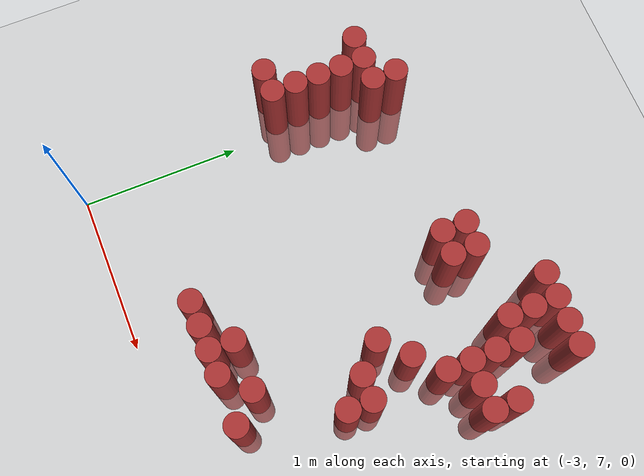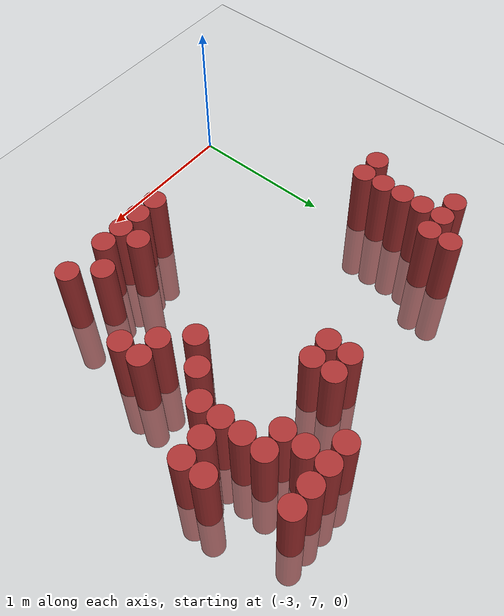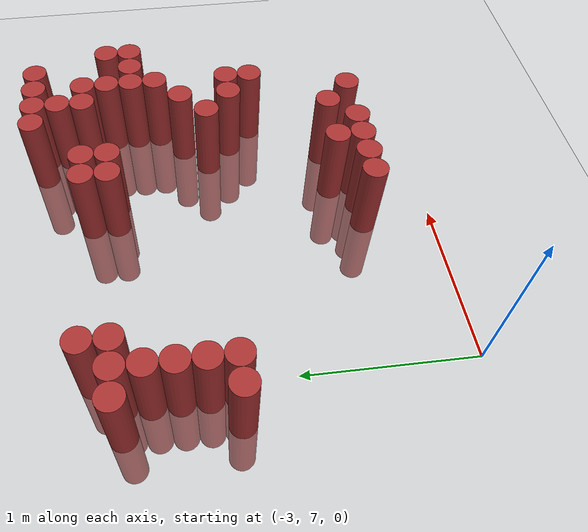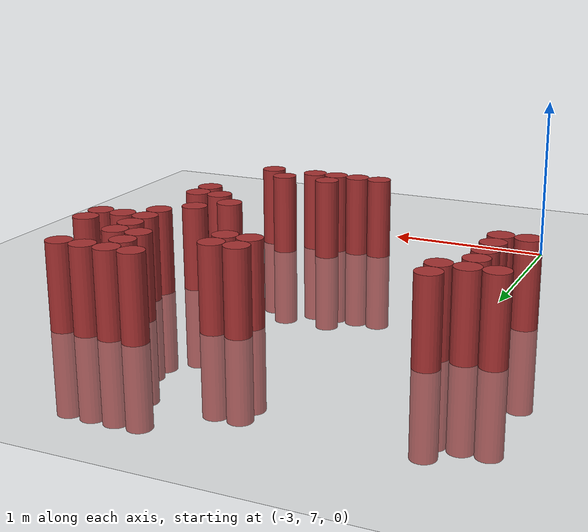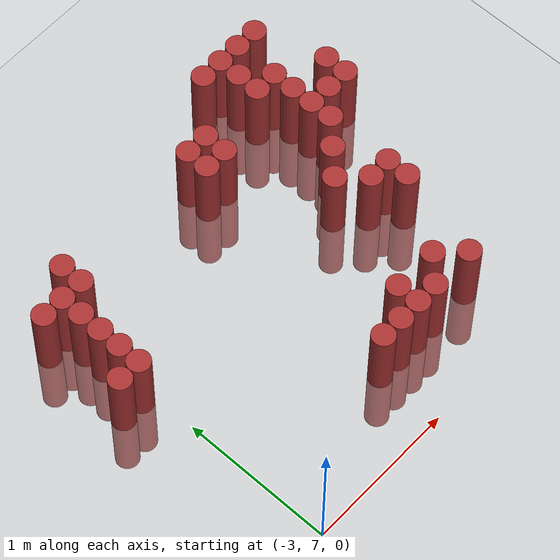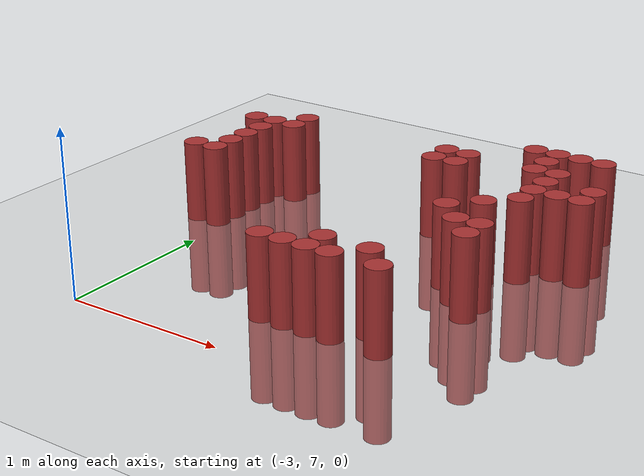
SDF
<sdf version="1.6">
 <world name="default">
  <model name="ground_plane">
   <static>1</static>
   <link name="link">
    <collision name="collision">
     <geometry><plane><normal>0 0 1</normal><size>100 100</size></plane></geometry>
     <surface><friction><ode><mu>100</mu><mu2>50</mu2></ode></friction></surface>
    </collision>
    <visual name="visual">
     <cast_shadows>0</cast_shadows>
     <geometry><plane><normal>0 0 1</normal><size>100 100</size></plane></geometry>
     <material>
      <script><uri>file://media/materials/scripts/gazebo.material</uri><name>Gazebo/Grey</name></script>
     </material>
    </visual>
   </link>
  </model>
  <model name="unit_cylinder_205">
   <static>1</static>
   <pose>-3.225000 8.325000 0.000000 0.000000 0.000000 0.000000</pose>
   <link name="link">
    <inertial>
     <mass>1</mass>
     <inertia><ixx>0.145833</ixx><ixy>0</ixy><ixz>0</ixz><iyy>0.145833</iyy><iyz>0</iyz><izz>0.125</izz></inertia>
    </inertial>
    <collision name="collision">
     <geometry><cylinder><radius>0.075000</radius><length>1</length></cylinder></geometry>
    </collision>
    <visual name="visual">
     <geometry><cylinder><radius>0.075000</radius><length>1</length></cylinder></geometry>
     <material>
      <ambient>0.648000 0.192000 0.192000 1</ambient>
      <diffuse>0.648000 0.192000 0.192000 1</diffuse>
     </material>
     <material>
      <script><name>Gazebo/Grey</name><uri>file://media/materials/scripts/gazebo.material</uri></script>
     </material>
    </visual>
    <sensor name="sensor_contact" type="contact"><contact><collision>collision</collision></contact></sensor>
   </link>
   <plugin filename="gz-sim-touchplugin-system" name="gz::sim::systems::TouchPlugin">
    <target>robot</target>
    <namespace>robot</namespace>
    <time>0.001</time>
    <enabled>true</enabled>
   </plugin>
  </model>
  <model name="unit_cylinder_206">
   <static>1</static>
   <pose>-3.225000 8.925000 0.000000 0.000000 0.000000 0.000000</pose>
   <link name="link">
    <inertial>
     <mass>1</mass>
     <inertia><ixx>0.145833</ixx><ixy>0</ixy><ixz>0</ixz><iyy>0.145833</iyy><iyz>0</iyz><izz>0.125</izz></inertia>
    </inertial>
    <collision name="collision">
     <geometry><cylinder><radius>0.075000</radius><length>1</length></cylinder></geometry>
    </collision>
    <visual name="visual">
     <geometry><cylinder><radius>0.075000</radius><length>1</length></cylinder></geometry>
     <material>
      <ambient>0.648000 0.192000 0.192000 1</ambient>
      <diffuse>0.648000 0.192000 0.192000 1</diffuse>
     </material>
     <material>
      <script><name>Gazebo/Grey</name><uri>file://media/materials/scripts/gazebo.material</uri></script>
     </material>
    </visual>
    <sensor name="sensor_contact" type="contact"><contact><collision>collision</collision></contact></sensor>
   </link>
   <plugin filename="gz-sim-touchplugin-system" name="gz::sim::systems::TouchPlugin">
    <target>robot</target>
    <namespace>robot</namespace>
    <time>0.001</time>
    <enabled>true</enabled>
   </plugin>
  </model>
  <model name="unit_cylinder_212">
   <static>1</static>
   <pose>-3.075000 8.325000 0.000000 0.000000 0.000000 0.000000</pose>
   <link name="link">
    <inertial>
     <mass>1</mass>
     <inertia><ixx>0.145833</ixx><ixy>0</ixy><ixz>0</ixz><iyy>0.145833</iyy><iyz>0</iyz><izz>0.125</izz></inertia>
    </inertial>
    <collision name="collision">
     <geometry><cylinder><radius>0.075000</radius><length>1</length></cylinder></geometry>
    </collision>
    <visual name="visual">
     <geometry><cylinder><radius>0.075000</radius><length>1</length></cylinder></geometry>
     <material>
      <ambient>0.648000 0.192000 0.192000 1</ambient>
      <diffuse>0.648000 0.192000 0.192000 1</diffuse>
     </material>
     <material>
      <script><name>Gazebo/Grey</name><uri>file://media/materials/scripts/gazebo.material</uri></script>
     </material>
    </visual>
    <sensor name="sensor_contact" type="contact"><contact><collision>collision</collision></contact></sensor>
   </link>
   <plugin filename="gz-sim-touchplugin-system" name="gz::sim::systems::TouchPlugin">
    <target>robot</target>
    <namespace>robot</namespace>
    <time>0.001</time>
    <enabled>true</enabled>
   </plugin>
  </model>
  <model name="unit_cylinder_213">
   <static>1</static>
   <pose>-3.075000 8.475000 0.000000 0.000000 0.000000 0.000000</pose>
   <link name="link">
    <inertial>
     <mass>1</mass>
     <inertia><ixx>0.145833</ixx><ixy>0</ixy><ixz>0</ixz><iyy>0.145833</iyy><iyz>0</iyz><izz>0.125</izz></inertia>
    </inertial>
    <collision name="collision">
     <geometry><cylinder><radius>0.075000</radius><length>1</length></cylinder></geometry>
    </collision>
    <visual name="visual">
     <geometry><cylinder><radius>0.075000</radius><length>1</length></cylinder></geometry>
     <material>
      <ambient>0.648000 0.192000 0.192000 1</ambient>
      <diffuse>0.648000 0.192000 0.192000 1</diffuse>
     </material>
     <material>
      <script><name>Gazebo/Grey</name><uri>file://media/materials/scripts/gazebo.material</uri></script>
     </material>
    </visual>
    <sensor name="sensor_contact" type="contact"><contact><collision>collision</collision></contact></sensor>
   </link>
   <plugin filename="gz-sim-touchplugin-system" name="gz::sim::systems::TouchPlugin">
    <target>robot</target>
    <namespace>robot</namespace>
    <time>0.001</time>
    <enabled>true</enabled>
   </plugin>
  </model>
  <model name="unit_cylinder_214">
   <static>1</static>
   <pose>-3.075000 8.625000 0.000000 0.000000 0.000000 0.000000</pose>
   <link name="link">
    <inertial>
     <mass>1</mass>
     <inertia><ixx>0.145833</ixx><ixy>0</ixy><ixz>0</ixz><iyy>0.145833</iyy><iyz>0</iyz><izz>0.125</izz></inertia>
    </inertial>
    <collision name="collision">
     <geometry><cylinder><radius>0.075000</radius><length>1</length></cylinder></geometry>
    </collision>
    <visual name="visual">
     <geometry><cylinder><radius>0.075000</radius><length>1</length></cylinder></geometry>
     <material>
      <ambient>0.648000 0.192000 0.192000 1</ambient>
      <diffuse>0.648000 0.192000 0.192000 1</diffuse>
     </material>
     <material>
      <script><name>Gazebo/Grey</name><uri>file://media/materials/scripts/gazebo.material</uri></script>
     </material>
    </visual>
    <sensor name="sensor_contact" type="contact"><contact><collision>collision</collision></contact></sensor>
   </link>
   <plugin filename="gz-sim-touchplugin-system" name="gz::sim::systems::TouchPlugin">
    <target>robot</target>
    <namespace>robot</namespace>
    <time>0.001</time>
    <enabled>true</enabled>
   </plugin>
  </model>
  <model name="unit_cylinder_215">
   <static>1</static>
   <pose>-3.075000 8.775000 0.000000 0.000000 0.000000 0.000000</pose>
   <link name="link">
    <inertial>
     <mass>1</mass>
     <inertia><ixx>0.145833</ixx><ixy>0</ixy><ixz>0</ixz><iyy>0.145833</iyy><iyz>0</iyz><izz>0.125</izz></inertia>
    </inertial>
    <collision name="collision">
     <geometry><cylinder><radius>0.075000</radius><length>1</length></cylinder></geometry>
    </collision>
    <visual name="visual">
     <geometry><cylinder><radius>0.075000</radius><length>1</length></cylinder></geometry>
     <material>
      <ambient>0.648000 0.192000 0.192000 1</ambient>
      <diffuse>0.648000 0.192000 0.192000 1</diffuse>
     </material>
     <material>
      <script><name>Gazebo/Grey</name><uri>file://media/materials/scripts/gazebo.material</uri></script>
     </material>
    </visual>
    <sensor name="sensor_contact" type="contact"><contact><collision>collision</collision></contact></sensor>
   </link>
   <plugin filename="gz-sim-touchplugin-system" name="gz::sim::systems::TouchPlugin">
    <target>robot</target>
    <namespace>robot</namespace>
    <time>0.001</time>
    <enabled>true</enabled>
   </plugin>
  </model>
  <model name="unit_cylinder_216">
   <static>1</static>
   <pose>-3.075000 8.925000 0.000000 0.000000 0.000000 0.000000</pose>
   <link name="link">
    <inertial>
     <mass>1</mass>
     <inertia><ixx>0.145833</ixx><ixy>0</ixy><ixz>0</ixz><iyy>0.145833</iyy><iyz>0</iyz><izz>0.125</izz></inertia>
    </inertial>
    <collision name="collision">
     <geometry><cylinder><radius>0.075000</radius><length>1</length></cylinder></geometry>
    </collision>
    <visual name="visual">
     <geometry><cylinder><radius>0.075000</radius><length>1</length></cylinder></geometry>
     <material>
      <ambient>0.648000 0.192000 0.192000 1</ambient>
      <diffuse>0.648000 0.192000 0.192000 1</diffuse>
     </material>
     <material>
      <script><name>Gazebo/Grey</name><uri>file://media/materials/scripts/gazebo.material</uri></script>
     </material>
    </visual>
    <sensor name="sensor_contact" type="contact"><contact><collision>collision</collision></contact></sensor>
   </link>
   <plugin filename="gz-sim-touchplugin-system" name="gz::sim::systems::TouchPlugin">
    <target>robot</target>
    <namespace>robot</namespace>
    <time>0.001</time>
    <enabled>true</enabled>
   </plugin>
  </model>
  <model name="unit_cylinder_218">
   <static>1</static>
   <pose>-2.925000 8.925000 0.000000 0.000000 0.000000 0.000000</pose>
   <link name="link">
    <inertial>
     <mass>1</mass>
     <inertia><ixx>0.145833</ixx><ixy>0</ixy><ixz>0</ixz><iyy>0.145833</iyy><iyz>0</iyz><izz>0.125</izz></inertia>
    </inertial>
    <collision name="collision">
     <geometry><cylinder><radius>0.075000</radius><length>1</length></cylinder></geometry>
    </collision>
    <visual name="visual">
     <geometry><cylinder><radius>0.075000</radius><length>1</length></cylinder></geometry>
     <material>
      <ambient>0.648000 0.192000 0.192000 1</ambient>
      <diffuse>0.648000 0.192000 0.192000 1</diffuse>
     </material>
     <material>
      <script><name>Gazebo/Grey</name><uri>file://media/materials/scripts/gazebo.material</uri></script>
     </material>
    </visual>
    <sensor name="sensor_contact" type="contact"><contact><collision>collision</collision></contact></sensor>
   </link>
   <plugin filename="gz-sim-touchplugin-system" name="gz::sim::systems::TouchPlugin">
    <target>robot</target>
    <namespace>robot</namespace>
    <time>0.001</time>
    <enabled>true</enabled>
   </plugin>
  </model>
  <model name="unit_cylinder_219">
   <static>1</static>
   <pose>-2.925000 9.075000 0.000000 0.000000 0.000000 0.000000</pose>
   <link name="link">
    <inertial>
     <mass>1</mass>
     <inertia><ixx>0.145833</ixx><ixy>0</ixy><ixz>0</ixz><iyy>0.145833</iyy><iyz>0</iyz><izz>0.125</izz></inertia>
    </inertial>
    <collision name="collision">
     <geometry><cylinder><radius>0.075000</radius><length>1</length></cylinder></geometry>
    </collision>
    <visual name="visual">
     <geometry><cylinder><radius>0.075000</radius><length>1</length></cylinder></geometry>
     <material>
      <ambient>0.648000 0.192000 0.192000 1</ambient>
      <diffuse>0.648000 0.192000 0.192000 1</diffuse>
     </material>
     <material>
      <script><name>Gazebo/Grey</name><uri>file://media/materials/scripts/gazebo.material</uri></script>
     </material>
    </visual>
    <sensor name="sensor_contact" type="contact"><contact><collision>collision</collision></contact></sensor>
   </link>
   <plugin filename="gz-sim-touchplugin-system" name="gz::sim::systems::TouchPlugin">
    <target>robot</target>
    <namespace>robot</namespace>
    <time>0.001</time>
    <enabled>true</enabled>
   </plugin>
  </model>
  <model name="unit_cylinder_223">
   <static>1</static>
   <pose>-2.025000 7.425000 0.000000 0.000000 0.000000 0.000000</pose>
   <link name="link">
    <inertial>
     <mass>1</mass>
     <inertia><ixx>0.145833</ixx><ixy>0</ixy><ixz>0</ixz><iyy>0.145833</iyy><iyz>0</iyz><izz>0.125</izz></inertia>
    </inertial>
    <collision name="collision">
     <geometry><cylinder><radius>0.075000</radius><length>1</length></cylinder></geometry>
    </collision>
    <visual name="visual">
     <geometry><cylinder><radius>0.075000</radius><length>1</length></cylinder></geometry>
     <material>
      <ambient>0.648000 0.192000 0.192000 1</ambient>
      <diffuse>0.648000 0.192000 0.192000 1</diffuse>
     </material>
     <material>
      <script><name>Gazebo/Grey</name><uri>file://media/materials/scripts/gazebo.material</uri></script>
     </material>
    </visual>
    <sensor name="sensor_contact" type="contact"><contact><collision>collision</collision></contact></sensor>
   </link>
   <plugin filename="gz-sim-touchplugin-system" name="gz::sim::systems::TouchPlugin">
    <target>robot</target>
    <namespace>robot</namespace>
    <time>0.001</time>
    <enabled>true</enabled>
   </plugin>
  </model>
  <model name="unit_cylinder_228">
   <static>1</static>
   <pose>-1.875000 7.425000 0.000000 0.000000 0.000000 0.000000</pose>
   <link name="link">
    <inertial>
     <mass>1</mass>
     <inertia><ixx>0.145833</ixx><ixy>0</ixy><ixz>0</ixz><iyy>0.145833</iyy><iyz>0</iyz><izz>0.125</izz></inertia>
    </inertial>
    <collision name="collision">
     <geometry><cylinder><radius>0.075000</radius><length>1</length></cylinder></geometry>
    </collision>
    <visual name="visual">
     <geometry><cylinder><radius>0.075000</radius><length>1</length></cylinder></geometry>
     <material>
      <ambient>0.648000 0.192000 0.192000 1</ambient>
      <diffuse>0.648000 0.192000 0.192000 1</diffuse>
     </material>
     <material>
      <script><name>Gazebo/Grey</name><uri>file://media/materials/scripts/gazebo.material</uri></script>
     </material>
    </visual>
    <sensor name="sensor_contact" type="contact"><contact><collision>collision</collision></contact></sensor>
   </link>
   <plugin filename="gz-sim-touchplugin-system" name="gz::sim::systems::TouchPlugin">
    <target>robot</target>
    <namespace>robot</namespace>
    <time>0.001</time>
    <enabled>true</enabled>
   </plugin>
  </model>
  <model name="unit_cylinder_229">
   <static>1</static>
   <pose>-1.875000 8.925000 0.000000 0.000000 0.000000 0.000000</pose>
   <link name="link">
    <inertial>
     <mass>1</mass>
     <inertia><ixx>0.145833</ixx><ixy>0</ixy><ixz>0</ixz><iyy>0.145833</iyy><iyz>0</iyz><izz>0.125</izz></inertia>
    </inertial>
    <collision name="collision">
     <geometry><cylinder><radius>0.075000</radius><length>1</length></cylinder></geometry>
    </collision>
    <visual name="visual">
     <geometry><cylinder><radius>0.075000</radius><length>1</length></cylinder></geometry>
     <material>
      <ambient>0.648000 0.192000 0.192000 1</ambient>
      <diffuse>0.648000 0.192000 0.192000 1</diffuse>
     </material>
     <material>
      <script><name>Gazebo/Grey</name><uri>file://media/materials/scripts/gazebo.material</uri></script>
     </material>
    </visual>
    <sensor name="sensor_contact" type="contact"><contact><collision>collision</collision></contact></sensor>
   </link>
   <plugin filename="gz-sim-touchplugin-system" name="gz::sim::systems::TouchPlugin">
    <target>robot</target>
    <namespace>robot</namespace>
    <time>0.001</time>
    <enabled>true</enabled>
   </plugin>
  </model>
  <model name="unit_cylinder_230">
   <static>1</static>
   <pose>-1.875000 9.075000 0.000000 0.000000 0.000000 0.000000</pose>
   <link name="link">
    <inertial>
     <mass>1</mass>
     <inertia><ixx>0.145833</ixx><ixy>0</ixy><ixz>0</ixz><iyy>0.145833</iyy><iyz>0</iyz><izz>0.125</izz></inertia>
    </inertial>
    <collision name="collision">
     <geometry><cylinder><radius>0.075000</radius><length>1</length></cylinder></geometry>
    </collision>
    <visual name="visual">
     <geometry><cylinder><radius>0.075000</radius><length>1</length></cylinder></geometry>
     <material>
      <ambient>0.648000 0.192000 0.192000 1</ambient>
      <diffuse>0.648000 0.192000 0.192000 1</diffuse>
     </material>
     <material>
      <script><name>Gazebo/Grey</name><uri>file://media/materials/scripts/gazebo.material</uri></script>
     </material>
    </visual>
    <sensor name="sensor_contact" type="contact"><contact><collision>collision</collision></contact></sensor>
   </link>
   <plugin filename="gz-sim-touchplugin-system" name="gz::sim::systems::TouchPlugin">
    <target>robot</target>
    <namespace>robot</namespace>
    <time>0.001</time>
    <enabled>true</enabled>
   </plugin>
  </model>
  <model name="unit_cylinder_234">
   <static>1</static>
   <pose>-1.725000 7.425000 0.000000 0.000000 0.000000 0.000000</pose>
   <link name="link">
    <inertial>
     <mass>1</mass>
     <inertia><ixx>0.145833</ixx><ixy>0</ixy><ixz>0</ixz><iyy>0.145833</iyy><iyz>0</iyz><izz>0.125</izz></inertia>
    </inertial>
    <collision name="collision">
     <geometry><cylinder><radius>0.075000</radius><length>1</length></cylinder></geometry>
    </collision>
    <visual name="visual">
     <geometry><cylinder><radius>0.075000</radius><length>1</length></cylinder></geometry>
     <material>
      <ambient>0.648000 0.192000 0.192000 1</ambient>
      <diffuse>0.648000 0.192000 0.192000 1</diffuse>
     </material>
     <material>
      <script><name>Gazebo/Grey</name><uri>file://media/materials/scripts/gazebo.material</uri></script>
     </material>
    </visual>
    <sensor name="sensor_contact" type="contact"><contact><collision>collision</collision></contact></sensor>
   </link>
   <plugin filename="gz-sim-touchplugin-system" name="gz::sim::systems::TouchPlugin">
    <target>robot</target>
    <namespace>robot</namespace>
    <time>0.001</time>
    <enabled>true</enabled>
   </plugin>
  </model>
  <model name="unit_cylinder_235">
   <static>1</static>
   <pose>-1.725000 7.575000 0.000000 0.000000 0.000000 0.000000</pose>
   <link name="link">
    <inertial>
     <mass>1</mass>
     <inertia><ixx>0.145833</ixx><ixy>0</ixy><ixz>0</ixz><iyy>0.145833</iyy><iyz>0</iyz><izz>0.125</izz></inertia>
    </inertial>
    <collision name="collision">
     <geometry><cylinder><radius>0.075000</radius><length>1</length></cylinder></geometry>
    </collision>
    <visual name="visual">
     <geometry><cylinder><radius>0.075000</radius><length>1</length></cylinder></geometry>
     <material>
      <ambient>0.648000 0.192000 0.192000 1</ambient>
      <diffuse>0.648000 0.192000 0.192000 1</diffuse>
     </material>
     <material>
      <script><name>Gazebo/Grey</name><uri>file://media/materials/scripts/gazebo.material</uri></script>
     </material>
    </visual>
    <sensor name="sensor_contact" type="contact"><contact><collision>collision</collision></contact></sensor>
   </link>
   <plugin filename="gz-sim-touchplugin-system" name="gz::sim::systems::TouchPlugin">
    <target>robot</target>
    <namespace>robot</namespace>
    <time>0.001</time>
    <enabled>true</enabled>
   </plugin>
  </model>
  <model name="unit_cylinder_236">
   <static>1</static>
   <pose>-1.725000 8.925000 0.000000 0.000000 0.000000 0.000000</pose>
   <link name="link">
    <inertial>
     <mass>1</mass>
     <inertia><ixx>0.145833</ixx><ixy>0</ixy><ixz>0</ixz><iyy>0.145833</iyy><iyz>0</iyz><izz>0.125</izz></inertia>
    </inertial>
    <collision name="collision">
     <geometry><cylinder><radius>0.075000</radius><length>1</length></cylinder></geometry>
    </collision>
    <visual name="visual">
     <geometry><cylinder><radius>0.075000</radius><length>1</length></cylinder></geometry>
     <material>
      <ambient>0.648000 0.192000 0.192000 1</ambient>
      <diffuse>0.648000 0.192000 0.192000 1</diffuse>
     </material>
     <material>
      <script><name>Gazebo/Grey</name><uri>file://media/materials/scripts/gazebo.material</uri></script>
     </material>
    </visual>
    <sensor name="sensor_contact" type="contact"><contact><collision>collision</collision></contact></sensor>
   </link>
   <plugin filename="gz-sim-touchplugin-system" name="gz::sim::systems::TouchPlugin">
    <target>robot</target>
    <namespace>robot</namespace>
    <time>0.001</time>
    <enabled>true</enabled>
   </plugin>
  </model>
  <model name="unit_cylinder_237">
   <static>1</static>
   <pose>-1.725000 9.075000 0.000000 0.000000 0.000000 0.000000</pose>
   <link name="link">
    <inertial>
     <mass>1</mass>
     <inertia><ixx>0.145833</ixx><ixy>0</ixy><ixz>0</ixz><iyy>0.145833</iyy><iyz>0</iyz><izz>0.125</izz></inertia>
    </inertial>
    <collision name="collision">
     <geometry><cylinder><radius>0.075000</radius><length>1</length></cylinder></geometry>
    </collision>
    <visual name="visual">
     <geometry><cylinder><radius>0.075000</radius><length>1</length></cylinder></geometry>
     <material>
      <ambient>0.648000 0.192000 0.192000 1</ambient>
      <diffuse>0.648000 0.192000 0.192000 1</diffuse>
     </material>
     <material>
      <script><name>Gazebo/Grey</name><uri>file://media/materials/scripts/gazebo.material</uri></script>
     </material>
    </visual>
    <sensor name="sensor_contact" type="contact"><contact><collision>collision</collision></contact></sensor>
   </link>
   <plugin filename="gz-sim-touchplugin-system" name="gz::sim::systems::TouchPlugin">
    <target>robot</target>
    <namespace>robot</namespace>
    <time>0.001</time>
    <enabled>true</enabled>
   </plugin>
  </model>
  <model name="unit_cylinder_240">
   <static>1</static>
   <pose>-1.575000 7.425000 0.000000 0.000000 0.000000 0.000000</pose>
   <link name="link">
    <inertial>
     <mass>1</mass>
     <inertia><ixx>0.145833</ixx><ixy>0</ixy><ixz>0</ixz><iyy>0.145833</iyy><iyz>0</iyz><izz>0.125</izz></inertia>
    </inertial>
    <collision name="collision">
     <geometry><cylinder><radius>0.075000</radius><length>1</length></cylinder></geometry>
    </collision>
    <visual name="visual">
     <geometry><cylinder><radius>0.075000</radius><length>1</length></cylinder></geometry>
     <material>
      <ambient>0.648000 0.192000 0.192000 1</ambient>
      <diffuse>0.648000 0.192000 0.192000 1</diffuse>
     </material>
     <material>
      <script><name>Gazebo/Grey</name><uri>file://media/materials/scripts/gazebo.material</uri></script>
     </material>
    </visual>
    <sensor name="sensor_contact" type="contact"><contact><collision>collision</collision></contact></sensor>
   </link>
   <plugin filename="gz-sim-touchplugin-system" name="gz::sim::systems::TouchPlugin">
    <target>robot</target>
    <namespace>robot</namespace>
    <time>0.001</time>
    <enabled>true</enabled>
   </plugin>
  </model>
  <model name="unit_cylinder_246">
   <static>1</static>
   <pose>-1.425000 7.575000 0.000000 0.000000 0.000000 0.000000</pose>
   <link name="link">
    <inertial>
     <mass>1</mass>
     <inertia><ixx>0.145833</ixx><ixy>0</ixy><ixz>0</ixz><iyy>0.145833</iyy><iyz>0</iyz><izz>0.125</izz></inertia>
    </inertial>
    <collision name="collision">
     <geometry><cylinder><radius>0.075000</radius><length>1</length></cylinder></geometry>
    </collision>
    <visual name="visual">
     <geometry><cylinder><radius>0.075000</radius><length>1</length></cylinder></geometry>
     <material>
      <ambient>0.648000 0.192000 0.192000 1</ambient>
      <diffuse>0.648000 0.192000 0.192000 1</diffuse>
     </material>
     <material>
      <script><name>Gazebo/Grey</name><uri>file://media/materials/scripts/gazebo.material</uri></script>
     </material>
    </visual>
    <sensor name="sensor_contact" type="contact"><contact><collision>collision</collision></contact></sensor>
   </link>
   <plugin filename="gz-sim-touchplugin-system" name="gz::sim::systems::TouchPlugin">
    <target>robot</target>
    <namespace>robot</namespace>
    <time>0.001</time>
    <enabled>true</enabled>
   </plugin>
  </model>
  <model name="unit_cylinder_247">
   <static>1</static>
   <pose>-1.425000 8.325000 0.000000 0.000000 0.000000 0.000000</pose>
   <link name="link">
    <inertial>
     <mass>1</mass>
     <inertia><ixx>0.145833</ixx><ixy>0</ixy><ixz>0</ixz><iyy>0.145833</iyy><iyz>0</iyz><izz>0.125</izz></inertia>
    </inertial>
    <collision name="collision">
     <geometry><cylinder><radius>0.075000</radius><length>1</length></cylinder></geometry>
    </collision>
    <visual name="visual">
     <geometry><cylinder><radius>0.075000</radius><length>1</length></cylinder></geometry>
     <material>
      <ambient>0.648000 0.192000 0.192000 1</ambient>
      <diffuse>0.648000 0.192000 0.192000 1</diffuse>
     </material>
     <material>
      <script><name>Gazebo/Grey</name><uri>file://media/materials/scripts/gazebo.material</uri></script>
     </material>
    </visual>
    <sensor name="sensor_contact" type="contact"><contact><collision>collision</collision></contact></sensor>
   </link>
   <plugin filename="gz-sim-touchplugin-system" name="gz::sim::systems::TouchPlugin">
    <target>robot</target>
    <namespace>robot</namespace>
    <time>0.001</time>
    <enabled>true</enabled>
   </plugin>
  </model>
  <model name="unit_cylinder_248">
   <static>1</static>
   <pose>-1.425000 9.375000 0.000000 0.000000 0.000000 0.000000</pose>
   <link name="link">
    <inertial>
     <mass>1</mass>
     <inertia><ixx>0.145833</ixx><ixy>0</ixy><ixz>0</ixz><iyy>0.145833</iyy><iyz>0</iyz><izz>0.125</izz></inertia>
    </inertial>
    <collision name="collision">
     <geometry><cylinder><radius>0.075000</radius><length>1</length></cylinder></geometry>
    </collision>
    <visual name="visual">
     <geometry><cylinder><radius>0.075000</radius><length>1</length></cylinder></geometry>
     <material>
      <ambient>0.648000 0.192000 0.192000 1</ambient>
      <diffuse>0.648000 0.192000 0.192000 1</diffuse>
     </material>
     <material>
      <script><name>Gazebo/Grey</name><uri>file://media/materials/scripts/gazebo.material</uri></script>
     </material>
    </visual>
    <sensor name="sensor_contact" type="contact"><contact><collision>collision</collision></contact></sensor>
   </link>
   <plugin filename="gz-sim-touchplugin-system" name="gz::sim::systems::TouchPlugin">
    <target>robot</target>
    <namespace>robot</namespace>
    <time>0.001</time>
    <enabled>true</enabled>
   </plugin>
  </model>
  <model name="unit_cylinder_251">
   <static>1</static>
   <pose>-1.275000 7.425000 0.000000 0.000000 0.000000 0.000000</pose>
   <link name="link">
    <inertial>
     <mass>1</mass>
     <inertia><ixx>0.145833</ixx><ixy>0</ixy><ixz>0</ixz><iyy>0.145833</iyy><iyz>0</iyz><izz>0.125</izz></inertia>
    </inertial>
    <collision name="collision">
     <geometry><cylinder><radius>0.075000</radius><length>1</length></cylinder></geometry>
    </collision>
    <visual name="visual">
     <geometry><cylinder><radius>0.075000</radius><length>1</length></cylinder></geometry>
     <material>
      <ambient>0.648000 0.192000 0.192000 1</ambient>
      <diffuse>0.648000 0.192000 0.192000 1</diffuse>
     </material>
     <material>
      <script><name>Gazebo/Grey</name><uri>file://media/materials/scripts/gazebo.material</uri></script>
     </material>
    </visual>
    <sensor name="sensor_contact" type="contact"><contact><collision>collision</collision></contact></sensor>
   </link>
   <plugin filename="gz-sim-touchplugin-system" name="gz::sim::systems::TouchPlugin">
    <target>robot</target>
    <namespace>robot</namespace>
    <time>0.001</time>
    <enabled>true</enabled>
   </plugin>
  </model>
  <model name="unit_cylinder_252">
   <static>1</static>
   <pose>-1.275000 8.175000 0.000000 0.000000 0.000000 0.000000</pose>
   <link name="link">
    <inertial>
     <mass>1</mass>
     <inertia><ixx>0.145833</ixx><ixy>0</ixy><ixz>0</ixz><iyy>0.145833</iyy><iyz>0</iyz><izz>0.125</izz></inertia>
    </inertial>
    <collision name="collision">
     <geometry><cylinder><radius>0.075000</radius><length>1</length></cylinder></geometry>
    </collision>
    <visual name="visual">
     <geometry><cylinder><radius>0.075000</radius><length>1</length></cylinder></geometry>
     <material>
      <ambient>0.648000 0.192000 0.192000 1</ambient>
      <diffuse>0.648000 0.192000 0.192000 1</diffuse>
     </material>
     <material>
      <script><name>Gazebo/Grey</name><uri>file://media/materials/scripts/gazebo.material</uri></script>
     </material>
    </visual>
    <sensor name="sensor_contact" type="contact"><contact><collision>collision</collision></contact></sensor>
   </link>
   <plugin filename="gz-sim-touchplugin-system" name="gz::sim::systems::TouchPlugin">
    <target>robot</target>
    <namespace>robot</namespace>
    <time>0.001</time>
    <enabled>true</enabled>
   </plugin>
  </model>
  <model name="unit_cylinder_253">
   <static>1</static>
   <pose>-1.275000 8.475000 0.000000 0.000000 0.000000 0.000000</pose>
   <link name="link">
    <inertial>
     <mass>1</mass>
     <inertia><ixx>0.145833</ixx><ixy>0</ixy><ixz>0</ixz><iyy>0.145833</iyy><iyz>0</iyz><izz>0.125</izz></inertia>
    </inertial>
    <collision name="collision">
     <geometry><cylinder><radius>0.075000</radius><length>1</length></cylinder></geometry>
    </collision>
    <visual name="visual">
     <geometry><cylinder><radius>0.075000</radius><length>1</length></cylinder></geometry>
     <material>
      <ambient>0.648000 0.192000 0.192000 1</ambient>
      <diffuse>0.648000 0.192000 0.192000 1</diffuse>
     </material>
     <material>
      <script><name>Gazebo/Grey</name><uri>file://media/materials/scripts/gazebo.material</uri></script>
     </material>
    </visual>
    <sensor name="sensor_contact" type="contact"><contact><collision>collision</collision></contact></sensor>
   </link>
   <plugin filename="gz-sim-touchplugin-system" name="gz::sim::systems::TouchPlugin">
    <target>robot</target>
    <namespace>robot</namespace>
    <time>0.001</time>
    <enabled>true</enabled>
   </plugin>
  </model>
  <model name="unit_cylinder_254">
   <static>1</static>
   <pose>-1.275000 9.075000 0.000000 0.000000 0.000000 0.000000</pose>
   <link name="link">
    <inertial>
     <mass>1</mass>
     <inertia><ixx>0.145833</ixx><ixy>0</ixy><ixz>0</ixz><iyy>0.145833</iyy><iyz>0</iyz><izz>0.125</izz></inertia>
    </inertial>
    <collision name="collision">
     <geometry><cylinder><radius>0.075000</radius><length>1</length></cylinder></geometry>
    </collision>
    <visual name="visual">
     <geometry><cylinder><radius>0.075000</radius><length>1</length></cylinder></geometry>
     <material>
      <ambient>0.648000 0.192000 0.192000 1</ambient>
      <diffuse>0.648000 0.192000 0.192000 1</diffuse>
     </material>
     <material>
      <script><name>Gazebo/Grey</name><uri>file://media/materials/scripts/gazebo.material</uri></script>
     </material>
    </visual>
    <sensor name="sensor_contact" type="contact"><contact><collision>collision</collision></contact></sensor>
   </link>
   <plugin filename="gz-sim-touchplugin-system" name="gz::sim::systems::TouchPlugin">
    <target>robot</target>
    <namespace>robot</namespace>
    <time>0.001</time>
    <enabled>true</enabled>
   </plugin>
  </model>
  <model name="unit_cylinder_255">
   <static>1</static>
   <pose>-1.275000 9.225000 0.000000 0.000000 0.000000 0.000000</pose>
   <link name="link">
    <inertial>
     <mass>1</mass>
     <inertia><ixx>0.145833</ixx><ixy>0</ixy><ixz>0</ixz><iyy>0.145833</iyy><iyz>0</iyz><izz>0.125</izz></inertia>
    </inertial>
    <collision name="collision">
     <geometry><cylinder><radius>0.075000</radius><length>1</length></cylinder></geometry>
    </collision>
    <visual name="visual">
     <geometry><cylinder><radius>0.075000</radius><length>1</length></cylinder></geometry>
     <material>
      <ambient>0.648000 0.192000 0.192000 1</ambient>
      <diffuse>0.648000 0.192000 0.192000 1</diffuse>
     </material>
     <material>
      <script><name>Gazebo/Grey</name><uri>file://media/materials/scripts/gazebo.material</uri></script>
     </material>
    </visual>
    <sensor name="sensor_contact" type="contact"><contact><collision>collision</collision></contact></sensor>
   </link>
   <plugin filename="gz-sim-touchplugin-system" name="gz::sim::systems::TouchPlugin">
    <target>robot</target>
    <namespace>robot</namespace>
    <time>0.001</time>
    <enabled>true</enabled>
   </plugin>
  </model>
  <model name="unit_cylinder_256">
   <static>1</static>
   <pose>-1.275000 9.375000 0.000000 0.000000 0.000000 0.000000</pose>
   <link name="link">
    <inertial>
     <mass>1</mass>
     <inertia><ixx>0.145833</ixx><ixy>0</ixy><ixz>0</ixz><iyy>0.145833</iyy><iyz>0</iyz><izz>0.125</izz></inertia>
    </inertial>
    <collision name="collision">
     <geometry><cylinder><radius>0.075000</radius><length>1</length></cylinder></geometry>
    </collision>
    <visual name="visual">
     <geometry><cylinder><radius>0.075000</radius><length>1</length></cylinder></geometry>
     <material>
      <ambient>0.648000 0.192000 0.192000 1</ambient>
      <diffuse>0.648000 0.192000 0.192000 1</diffuse>
     </material>
     <material>
      <script><name>Gazebo/Grey</name><uri>file://media/materials/scripts/gazebo.material</uri></script>
     </material>
    </visual>
    <sensor name="sensor_contact" type="contact"><contact><collision>collision</collision></contact></sensor>
   </link>
   <plugin filename="gz-sim-touchplugin-system" name="gz::sim::systems::TouchPlugin">
    <target>robot</target>
    <namespace>robot</namespace>
    <time>0.001</time>
    <enabled>true</enabled>
   </plugin>
  </model>
  <model name="unit_cylinder_260">
   <static>1</static>
   <pose>-1.125000 8.025000 0.000000 0.000000 0.000000 0.000000</pose>
   <link name="link">
    <inertial>
     <mass>1</mass>
     <inertia><ixx>0.145833</ixx><ixy>0</ixy><ixz>0</ixz><iyy>0.145833</iyy><iyz>0</iyz><izz>0.125</izz></inertia>
    </inertial>
    <collision name="collision">
     <geometry><cylinder><radius>0.075000</radius><length>1</length></cylinder></geometry>
    </collision>
    <visual name="visual">
     <geometry><cylinder><radius>0.075000</radius><length>1</length></cylinder></geometry>
     <material>
      <ambient>0.648000 0.192000 0.192000 1</ambient>
      <diffuse>0.648000 0.192000 0.192000 1</diffuse>
     </material>
     <material>
      <script><name>Gazebo/Grey</name><uri>file://media/materials/scripts/gazebo.material</uri></script>
     </material>
    </visual>
    <sensor name="sensor_contact" type="contact"><contact><collision>collision</collision></contact></sensor>
   </link>
   <plugin filename="gz-sim-touchplugin-system" name="gz::sim::systems::TouchPlugin">
    <target>robot</target>
    <namespace>robot</namespace>
    <time>0.001</time>
    <enabled>true</enabled>
   </plugin>
  </model>
  <model name="unit_cylinder_261">
   <static>1</static>
   <pose>-1.125000 8.175000 0.000000 0.000000 0.000000 0.000000</pose>
   <link name="link">
    <inertial>
     <mass>1</mass>
     <inertia><ixx>0.145833</ixx><ixy>0</ixy><ixz>0</ixz><iyy>0.145833</iyy><iyz>0</iyz><izz>0.125</izz></inertia>
    </inertial>
    <collision name="collision">
     <geometry><cylinder><radius>0.075000</radius><length>1</length></cylinder></geometry>
    </collision>
    <visual name="visual">
     <geometry><cylinder><radius>0.075000</radius><length>1</length></cylinder></geometry>
     <material>
      <ambient>0.648000 0.192000 0.192000 1</ambient>
      <diffuse>0.648000 0.192000 0.192000 1</diffuse>
     </material>
     <material>
      <script><name>Gazebo/Grey</name><uri>file://media/materials/scripts/gazebo.material</uri></script>
     </material>
    </visual>
    <sensor name="sensor_contact" type="contact"><contact><collision>collision</collision></contact></sensor>
   </link>
   <plugin filename="gz-sim-touchplugin-system" name="gz::sim::systems::TouchPlugin">
    <target>robot</target>
    <namespace>robot</namespace>
    <time>0.001</time>
    <enabled>true</enabled>
   </plugin>
  </model>
  <model name="unit_cylinder_262">
   <static>1</static>
   <pose>-1.125000 8.625000 0.000000 0.000000 0.000000 0.000000</pose>
   <link name="link">
    <inertial>
     <mass>1</mass>
     <inertia><ixx>0.145833</ixx><ixy>0</ixy><ixz>0</ixz><iyy>0.145833</iyy><iyz>0</iyz><izz>0.125</izz></inertia>
    </inertial>
    <collision name="collision">
     <geometry><cylinder><radius>0.075000</radius><length>1</length></cylinder></geometry>
    </collision>
    <visual name="visual">
     <geometry><cylinder><radius>0.075000</radius><length>1</length></cylinder></geometry>
     <material>
      <ambient>0.648000 0.192000 0.192000 1</ambient>
      <diffuse>0.648000 0.192000 0.192000 1</diffuse>
     </material>
     <material>
      <script><name>Gazebo/Grey</name><uri>file://media/materials/scripts/gazebo.material</uri></script>
     </material>
    </visual>
    <sensor name="sensor_contact" type="contact"><contact><collision>collision</collision></contact></sensor>
   </link>
   <plugin filename="gz-sim-touchplugin-system" name="gz::sim::systems::TouchPlugin">
    <target>robot</target>
    <namespace>robot</namespace>
    <time>0.001</time>
    <enabled>true</enabled>
   </plugin>
  </model>
  <model name="unit_cylinder_263">
   <static>1</static>
   <pose>-1.125000 8.775000 0.000000 0.000000 0.000000 0.000000</pose>
   <link name="link">
    <inertial>
     <mass>1</mass>
     <inertia><ixx>0.145833</ixx><ixy>0</ixy><ixz>0</ixz><iyy>0.145833</iyy><iyz>0</iyz><izz>0.125</izz></inertia>
    </inertial>
    <collision name="collision">
     <geometry><cylinder><radius>0.075000</radius><length>1</length></cylinder></geometry>
    </collision>
    <visual name="visual">
     <geometry><cylinder><radius>0.075000</radius><length>1</length></cylinder></geometry>
     <material>
      <ambient>0.648000 0.192000 0.192000 1</ambient>
      <diffuse>0.648000 0.192000 0.192000 1</diffuse>
     </material>
     <material>
      <script><name>Gazebo/Grey</name><uri>file://media/materials/scripts/gazebo.material</uri></script>
     </material>
    </visual>
    <sensor name="sensor_contact" type="contact"><contact><collision>collision</collision></contact></sensor>
   </link>
   <plugin filename="gz-sim-touchplugin-system" name="gz::sim::systems::TouchPlugin">
    <target>robot</target>
    <namespace>robot</namespace>
    <time>0.001</time>
    <enabled>true</enabled>
   </plugin>
  </model>
  <model name="unit_cylinder_264">
   <static>1</static>
   <pose>-1.125000 8.925000 0.000000 0.000000 0.000000 0.000000</pose>
   <link name="link">
    <inertial>
     <mass>1</mass>
     <inertia><ixx>0.145833</ixx><ixy>0</ixy><ixz>0</ixz><iyy>0.145833</iyy><iyz>0</iyz><izz>0.125</izz></inertia>
    </inertial>
    <collision name="collision">
     <geometry><cylinder><radius>0.075000</radius><length>1</length></cylinder></geometry>
    </collision>
    <visual name="visual">
     <geometry><cylinder><radius>0.075000</radius><length>1</length></cylinder></geometry>
     <material>
      <ambient>0.648000 0.192000 0.192000 1</ambient>
      <diffuse>0.648000 0.192000 0.192000 1</diffuse>
     </material>
     <material>
      <script><name>Gazebo/Grey</name><uri>file://media/materials/scripts/gazebo.material</uri></script>
     </material>
    </visual>
    <sensor name="sensor_contact" type="contact"><contact><collision>collision</collision></contact></sensor>
   </link>
   <plugin filename="gz-sim-touchplugin-system" name="gz::sim::systems::TouchPlugin">
    <target>robot</target>
    <namespace>robot</namespace>
    <time>0.001</time>
    <enabled>true</enabled>
   </plugin>
  </model>
  <model name="unit_cylinder_265">
   <static>1</static>
   <pose>-1.125000 9.075000 0.000000 0.000000 0.000000 0.000000</pose>
   <link name="link">
    <inertial>
     <mass>1</mass>
     <inertia><ixx>0.145833</ixx><ixy>0</ixy><ixz>0</ixz><iyy>0.145833</iyy><iyz>0</iyz><izz>0.125</izz></inertia>
    </inertial>
    <collision name="collision">
     <geometry><cylinder><radius>0.075000</radius><length>1</length></cylinder></geometry>
    </collision>
    <visual name="visual">
     <geometry><cylinder><radius>0.075000</radius><length>1</length></cylinder></geometry>
     <material>
      <ambient>0.648000 0.192000 0.192000 1</ambient>
      <diffuse>0.648000 0.192000 0.192000 1</diffuse>
     </material>
     <material>
      <script><name>Gazebo/Grey</name><uri>file://media/materials/scripts/gazebo.material</uri></script>
     </material>
    </visual>
    <sensor name="sensor_contact" type="contact"><contact><collision>collision</collision></contact></sensor>
   </link>
   <plugin filename="gz-sim-touchplugin-system" name="gz::sim::systems::TouchPlugin">
    <target>robot</target>
    <namespace>robot</namespace>
    <time>0.001</time>
    <enabled>true</enabled>
   </plugin>
  </model>
  <model name="unit_cylinder_266">
   <static>1</static>
   <pose>-1.125000 9.375000 0.000000 0.000000 0.000000 0.000000</pose>
   <link name="link">
    <inertial>
     <mass>1</mass>
     <inertia><ixx>0.145833</ixx><ixy>0</ixy><ixz>0</ixz><iyy>0.145833</iyy><iyz>0</iyz><izz>0.125</izz></inertia>
    </inertial>
    <collision name="collision">
     <geometry><cylinder><radius>0.075000</radius><length>1</length></cylinder></geometry>
    </collision>
    <visual name="visual">
     <geometry><cylinder><radius>0.075000</radius><length>1</length></cylinder></geometry>
     <material>
      <ambient>0.648000 0.192000 0.192000 1</ambient>
      <diffuse>0.648000 0.192000 0.192000 1</diffuse>
     </material>
     <material>
      <script><name>Gazebo/Grey</name><uri>file://media/materials/scripts/gazebo.material</uri></script>
     </material>
    </visual>
    <sensor name="sensor_contact" type="contact"><contact><collision>collision</collision></contact></sensor>
   </link>
   <plugin filename="gz-sim-touchplugin-system" name="gz::sim::systems::TouchPlugin">
    <target>robot</target>
    <namespace>robot</namespace>
    <time>0.001</time>
    <enabled>true</enabled>
   </plugin>
  </model>
  <model name="unit_cylinder_271">
   <static>1</static>
   <pose>-0.975000 8.775000 0.000000 0.000000 0.000000 0.000000</pose>
   <link name="link">
    <inertial>
     <mass>1</mass>
     <inertia><ixx>0.145833</ixx><ixy>0</ixy><ixz>0</ixz><iyy>0.145833</iyy><iyz>0</iyz><izz>0.125</izz></inertia>
    </inertial>
    <collision name="collision">
     <geometry><cylinder><radius>0.075000</radius><length>1</length></cylinder></geometry>
    </collision>
    <visual name="visual">
     <geometry><cylinder><radius>0.075000</radius><length>1</length></cylinder></geometry>
     <material>
      <ambient>0.648000 0.192000 0.192000 1</ambient>
      <diffuse>0.648000 0.192000 0.192000 1</diffuse>
     </material>
     <material>
      <script><name>Gazebo/Grey</name><uri>file://media/materials/scripts/gazebo.material</uri></script>
     </material>
    </visual>
    <sensor name="sensor_contact" type="contact"><contact><collision>collision</collision></contact></sensor>
   </link>
   <plugin filename="gz-sim-touchplugin-system" name="gz::sim::systems::TouchPlugin">
    <target>robot</target>
    <namespace>robot</namespace>
    <time>0.001</time>
    <enabled>true</enabled>
   </plugin>
  </model>
  <model name="unit_cylinder_272">
   <static>1</static>
   <pose>-0.975000 9.375000 0.000000 0.000000 0.000000 0.000000</pose>
   <link name="link">
    <inertial>
     <mass>1</mass>
     <inertia><ixx>0.145833</ixx><ixy>0</ixy><ixz>0</ixz><iyy>0.145833</iyy><iyz>0</iyz><izz>0.125</izz></inertia>
    </inertial>
    <collision name="collision">
     <geometry><cylinder><radius>0.075000</radius><length>1</length></cylinder></geometry>
    </collision>
    <visual name="visual">
     <geometry><cylinder><radius>0.075000</radius><length>1</length></cylinder></geometry>
     <material>
      <ambient>0.648000 0.192000 0.192000 1</ambient>
      <diffuse>0.648000 0.192000 0.192000 1</diffuse>
     </material>
     <material>
      <script><name>Gazebo/Grey</name><uri>file://media/materials/scripts/gazebo.material</uri></script>
     </material>
    </visual>
    <sensor name="sensor_contact" type="contact"><contact><collision>collision</collision></contact></sensor>
   </link>
   <plugin filename="gz-sim-touchplugin-system" name="gz::sim::systems::TouchPlugin">
    <target>robot</target>
    <namespace>robot</namespace>
    <time>0.001</time>
    <enabled>true</enabled>
   </plugin>
  </model>
  <model name="unit_cylinder_278">
   <static>1</static>
   <pose>-0.825000 8.775000 0.000000 0.000000 0.000000 0.000000</pose>
   <link name="link">
    <inertial>
     <mass>1</mass>
     <inertia><ixx>0.145833</ixx><ixy>0</ixy><ixz>0</ixz><iyy>0.145833</iyy><iyz>0</iyz><izz>0.125</izz></inertia>
    </inertial>
    <collision name="collision">
     <geometry><cylinder><radius>0.075000</radius><length>1</length></cylinder></geometry>
    </collision>
    <visual name="visual">
     <geometry><cylinder><radius>0.075000</radius><length>1</length></cylinder></geometry>
     <material>
      <ambient>0.648000 0.192000 0.192000 1</ambient>
      <diffuse>0.648000 0.192000 0.192000 1</diffuse>
     </material>
     <material>
      <script><name>Gazebo/Grey</name><uri>file://media/materials/scripts/gazebo.material</uri></script>
     </material>
    </visual>
    <sensor name="sensor_contact" type="contact"><contact><collision>collision</collision></contact></sensor>
   </link>
   <plugin filename="gz-sim-touchplugin-system" name="gz::sim::systems::TouchPlugin">
    <target>robot</target>
    <namespace>robot</namespace>
    <time>0.001</time>
    <enabled>true</enabled>
   </plugin>
  </model>
  <model name="unit_cylinder_279">
   <static>1</static>
   <pose>-0.825000 8.925000 0.000000 0.000000 0.000000 0.000000</pose>
   <link name="link">
    <inertial>
     <mass>1</mass>
     <inertia><ixx>0.145833</ixx><ixy>0</ixy><ixz>0</ixz><iyy>0.145833</iyy><iyz>0</iyz><izz>0.125</izz></inertia>
    </inertial>
    <collision name="collision">
     <geometry><cylinder><radius>0.075000</radius><length>1</length></cylinder></geometry>
    </collision>
    <visual name="visual">
     <geometry><cylinder><radius>0.075000</radius><length>1</length></cylinder></geometry>
     <material>
      <ambient>0.648000 0.192000 0.192000 1</ambient>
      <diffuse>0.648000 0.192000 0.192000 1</diffuse>
     </material>
     <material>
      <script><name>Gazebo/Grey</name><uri>file://media/materials/scripts/gazebo.material</uri></script>
     </material>
    </visual>
    <sensor name="sensor_contact" type="contact"><contact><collision>collision</collision></contact></sensor>
   </link>
   <plugin filename="gz-sim-touchplugin-system" name="gz::sim::systems::TouchPlugin">
    <target>robot</target>
    <namespace>robot</namespace>
    <time>0.001</time>
    <enabled>true</enabled>
   </plugin>
  </model>
 </world>
</sdf>
